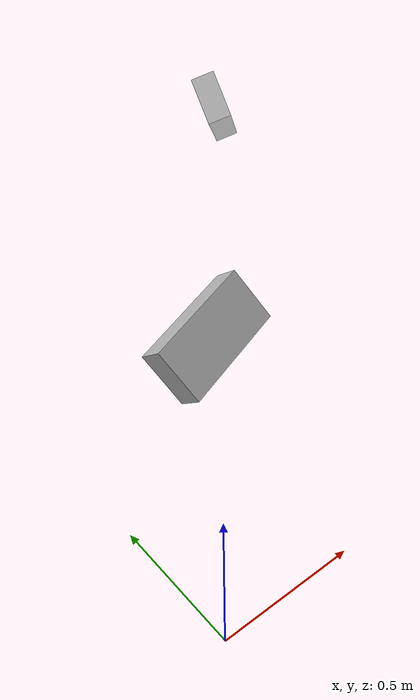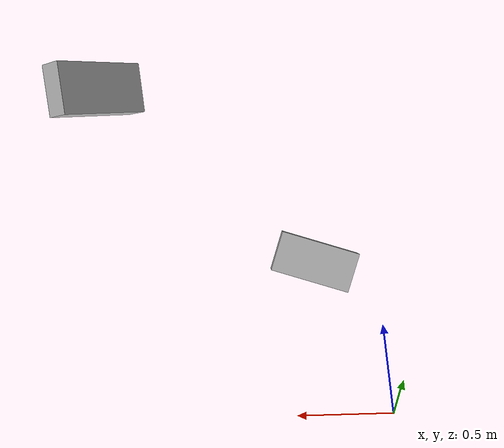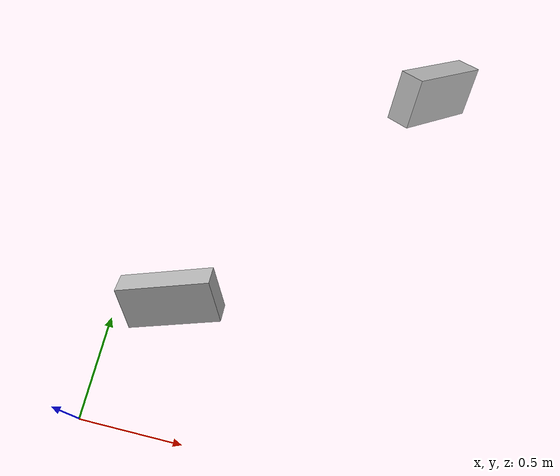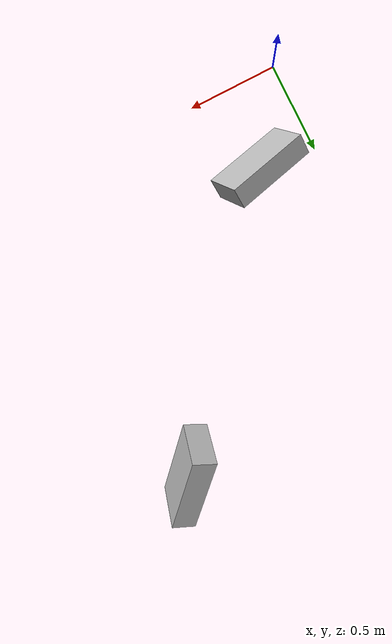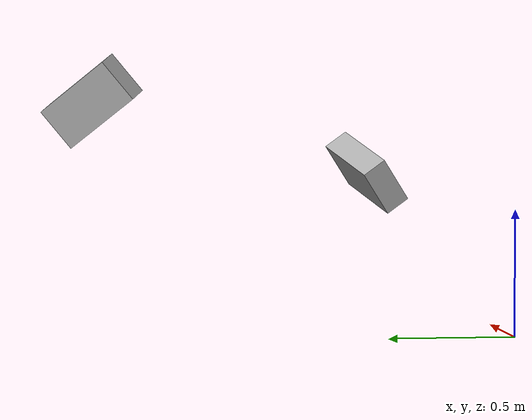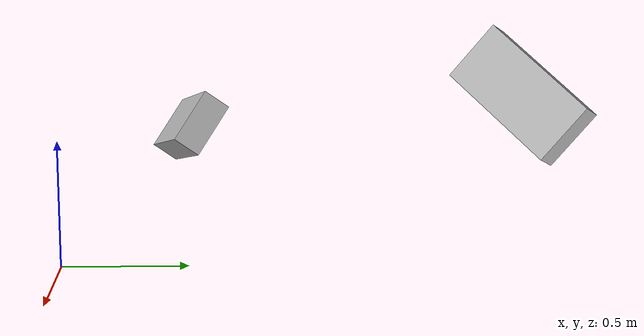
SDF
<?xml version='1.0' encoding='utf-8'?>
<sdf version="1.7">
  <model name="pose_joint_all">
    <link name="link_1">
      <pose>0.1 0.2 0.3 0.4 0.5 0.6</pose>
      <visual name="link_1_visual">
        <pose>0.2 0.3 0.4 0.5 0.6 0.7</pose>
        <geometry>
          <box>
            <size>0.1 0.2 0.4</size>
          </box>
        </geometry>
      </visual>
      <collision name="link_1_collision">
        <pose>0.3 0.4 0.5 0.6 0.7 0.8</pose>
        <geometry>
          <box>
            <size>0.1 0.2 0.4</size>
          </box>
        </geometry>
      </collision>
      <inertial>
        <pose>0.4 0.5 0.6 0.7 0.8 0.9</pose>
        <mass>1.23</mass>
        <inertia>
          <ixx>0.0205</ixx>
          <ixy>0</ixy>
          <ixz>0</ixz>
          <iyy>0.017425</iyy>
          <iyz>0</iyz>
          <izz>0.005125</izz>
        </inertia>
      </inertial>
    </link>
    <link name="link_2">
      <pose>0.5 0.6 0.7 0.8 0.9 1.0</pose>
      <visual name="link_2_visual">
        <pose>0.6 0.7 0.8 0.9 1.0 1.1</pose>
        <geometry>
          <box>
            <size>0.1 0.2 0.4</size>
          </box>
        </geometry>
      </visual>
      <collision name="link_2_collision">
        <pose>0.7 0.8 0.9 1.0 1.1 1.2</pose>
        <geometry>
          <box>
            <size>0.1 0.2 0.4</size>
          </box>
        </geometry>
      </collision>
      <inertial>
        <pose>0.8 0.9 1.0 1.1 1.2 1.3</pose>
        <mass>1.23</mass>
        <inertia>
          <ixx>0.0205</ixx>
          <ixy>0</ixy>
          <ixz>0</ixz>
          <iyy>0.017425</iyy>
          <iyz>0</iyz>
          <izz>0.005125</izz>
        </inertia>
      </inertial>
    </link>
    <joint name="joint" type="revolute">
      <pose>0.9 1.0 1.1 1.2 1.3 1.4</pose>
      <parent>link_1</parent>
      <child>link_2</child>
      <axis>
        <xyz>1 0 0</xyz>
        <limit>
          <lower>-1.5</lower>
          <upper>1.5</upper>
        </limit>
      </axis>
    </joint>
  </model>
</sdf>
